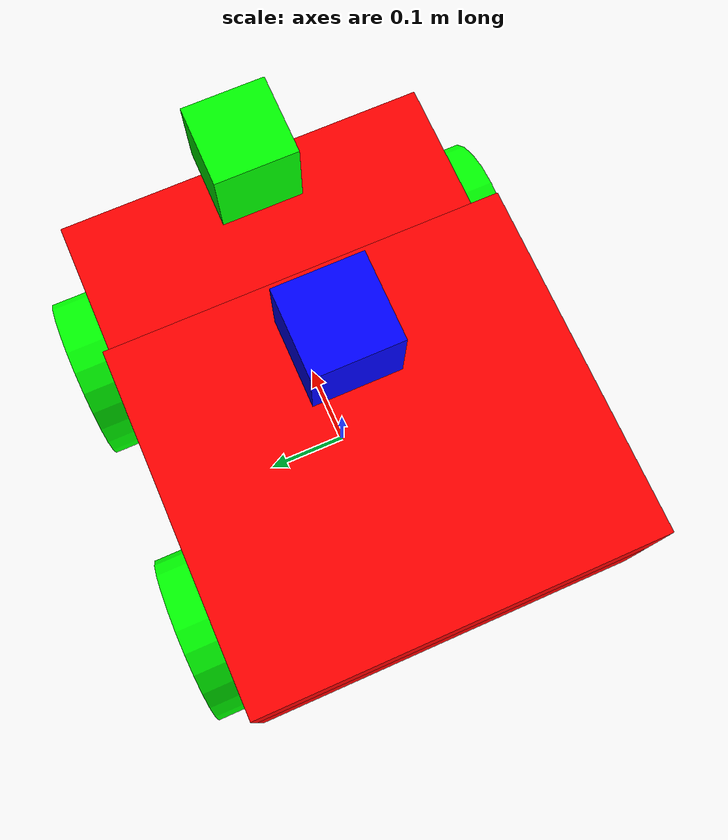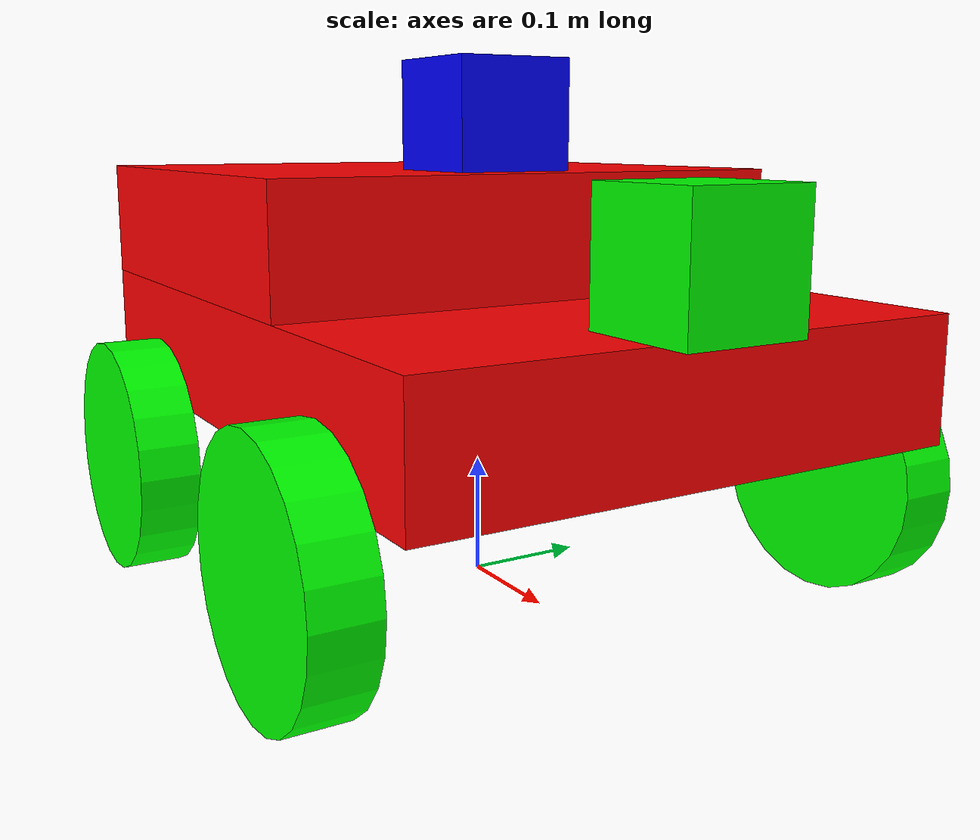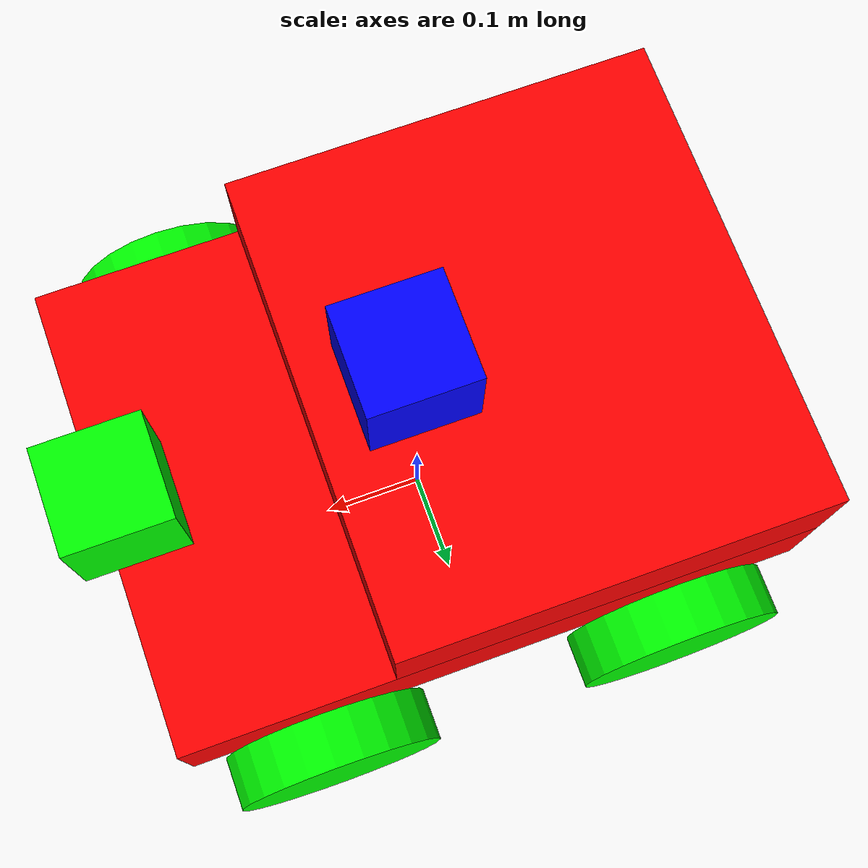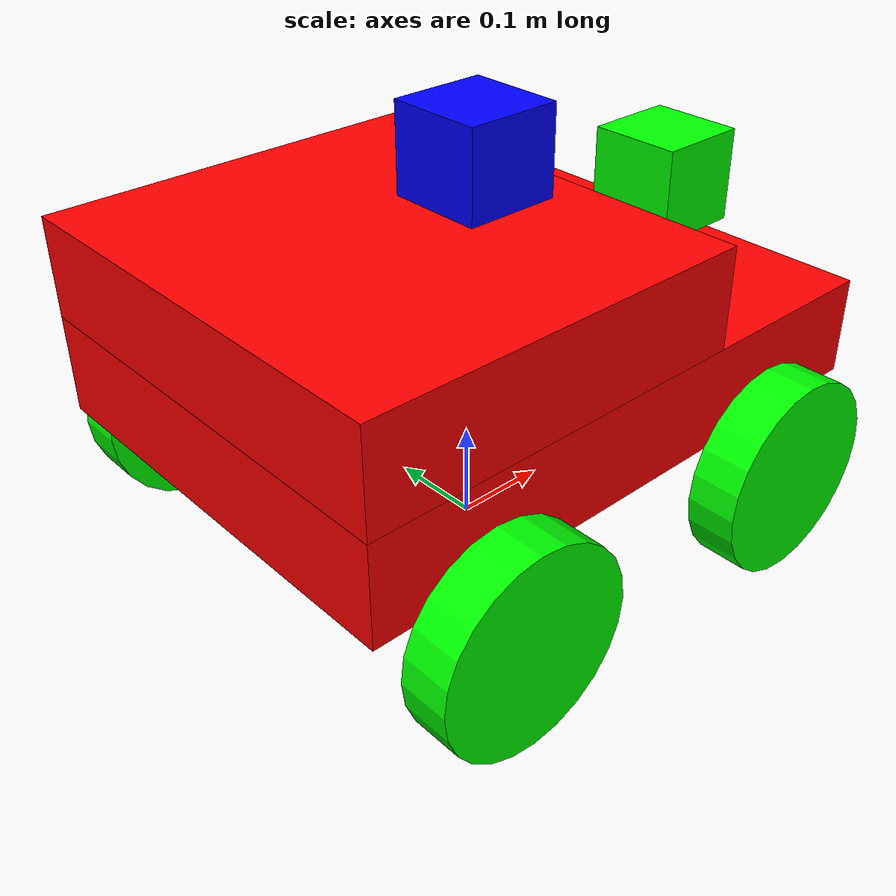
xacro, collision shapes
<?xml version='1.0'?>

<robot name="diffrobot" xmlns:xacro="http://www.ros.org/wiki/xacro">
    <xacro:include filename="$(find diffrobot_description)/urdf/diffrobot.gazebo"/>
    <link name="robot_footprint">
    </link>

    <joint name="robot_footprint_joint" type="fixed">
        <parent link="robot_footprint"/>
        <child link="base_link"/>
    </joint>

    <link name="base_link">
        <inertial>
            <origin xyz="0.0 0.0 0.0"/>
            <mass value="20"/>
            <inertia ixx="0.1" ixy="0.0" ixz="0.0" iyy="0.1" iyz="0.0" izz="0.1"/>
        </inertial>
        <visual name='base_link_visual'>
            <origin xyz="0.0 0.0 0.20" />
            <geometry>
                <box size="0.6 0.45 0.1"/>
            </geometry>
             <material name="">
            <color rgba="1.0 0.0 0.0 1.0"/>
            <texture filename=""/>
        </material>
        </visual>

        <collision name=''>
            <origin xyz="0.0 0.0 0.2" rpy="0.0 0.0 0.0"/>
            <geometry>
                <box size="0.6 0.45 0.1"/>
            </geometry>
        </collision>
        <visual name='base_link_visual'>
            <origin xyz="-0.10 0.0 0.30" />
            <geometry>
                <box size="0.4 0.45 0.1"/>
            </geometry>
             <material name="">
            <color rgba="1.0 0.0 0.0 1.0"/>
            <texture filename=""/>
        </material>
        </visual>

        <collision name=''>
            <origin xyz="-0.10 0.0 0.30" />
            <geometry>
                <box size="0.4 0.45 0.1"/>
            </geometry>
        </collision>
        </link>

    <link name="front_right_wheel">
    <inertial>
      <mass value="5"/>
      <origin rpy="0 0 0" xyz="0 0 0"/>
      <inertia ixx="0.1" ixy="0" ixz="0" iyy="0.1" iyz="0" izz="0.1"/>
    </inertial>

    <collision name="front_right_wheel_collision">
      <origin rpy="0 1.5707 1.5707" xyz="0 0 0" />
      <geometry>
        <cylinder length="0.05" radius="0.1"/>
      </geometry>
    </collision>

    <visual name="front_right_wheel_visual">
      <origin rpy="0 1.5707 1.5707" xyz="0 0 0"/>
      <geometry>
        <cylinder length="0.05" radius="0.1"/>
      </geometry>
     <material name="">
            <color rgba="0.0 1.0 0.0 1.0"/>
            <texture filename=""/>
        </material>
    </visual>

  </link>
  <joint name="joint_front_right_wheel" type="continuous">
    <origin rpy="0 0 0" xyz="0.175 -0.25 0.1"/>
    <child link="front_right_wheel" />
    <parent link="base_link"/>
    <axis rpy="0 0 0" xyz="0 1 0"/>
  </joint>

    <link name="front_left_wheel">
    <inertial>
      <mass value="5"/>
      <origin rpy="0 0 0" xyz="0 0 0"/>
      <inertia ixx="0.1" ixy="0" ixz="0" iyy="0.1" iyz="0" izz="0.1"/>
    </inertial>

    <collision name="front_left_wheel_collision">
      <origin rpy="0 1.5707 1.5707" xyz="0 0 0" />
      <geometry>
        <cylinder length="0.05" radius="0.1"/>
      </geometry>
    </collision>

    <visual name="front_left_wheel_visual">
      <origin rpy="0 1.5707 1.5707" xyz="0 0 0"/>
      <geometry>
        <cylinder length="0.05" radius="0.1"/>
      </geometry>
      <material name="">
            <color rgba="0.0 1.0 0.0 1.0"/>
            <texture filename=""/>
        </material>
    </visual>

  </link>
  <joint name="joint_front_left_wheel" type="continuous">
   <origin rpy="0 0 0" xyz="0.175 0.25 0.1"/>
    <child link="front_left_wheel" />
    <parent link="base_link"/>
    <axis rpy="0 0 0" xyz="0 1 0"/>
  </joint>

<link name="back_left_wheel">
    <inertial>
      <mass value="5"/>
      <origin rpy="0 0 0" xyz="0 0 0"/>
      <inertia ixx="0.1" ixy="0" ixz="0" iyy="0.1" iyz="0" izz="0.1"/>
    </inertial>

    <collision name="back_left_wheel_collision">
    <origin xyz="0.0 0.0 0.0" rpy="0.0 0.0 0.0"/>
      <geometry>
        <cylinder length="0.05" radius="0.1"/>
      </geometry>
    </collision>

    <visual name="back_left_wheel_visual">
      <origin xyz="0.0 0.0 0.0" rpy="0.0 0.0 0.0"/>
      <geometry>
        <cylinder length="0.05" radius="0.1"/>
      </geometry>
      <material name="">
            <color rgba="0.0 1.0 0.0 1.0"/>
            <texture filename=""/>
        </material>
    </visual>

  </link>
  <joint name="joint_back_left_wheel" type="fixed">
   <origin rpy="0 -1.5707 1.5707" xyz="-0.175 0.25 0.1" />
    <child link="back_left_wheel" />
    <parent link="base_link"/>
    <axis rpy="0 0 0" xyz="0 1 0"/>
  </joint>

  <link name="back_right_wheel">
    <inertial>
      <mass value="5"/>
      <origin rpy="0 0 0" xyz="0 0 0"/>
      <inertia ixx="0.1" ixy="0" ixz="0" iyy="0.1" iyz="0" izz="0.1"/>
    </inertial>

    <collision name="back_right_wheel_collision">
      <origin xyz="0.0 0.0 0.0" rpy="0.0 0.0 0.0"/>
      <geometry>
        <cylinder length="0.05" radius="0.1"/>
      </geometry>
    </collision>

    <visual name="back_right_wheel_visual">
      <origin xyz="0.0 0.0 0.0" rpy="0.0 0.0 0.0"/>
      <geometry>
        <cylinder length="0.05" radius="0.1"/>
      </geometry>
      <material name="">
            <color rgba="0.0 1.0 0.0 1.0"/>
            <texture filename=""/>
        </material>
    </visual>

  </link>
  <joint name="joint_back_right_wheel" type="fixed">
    <origin rpy="0 -1.5707 1.5707" xyz="-0.175 -0.25 0.1" />
    <child link="back_right_wheel" />
    <parent link="base_link"/>
    <axis rpy="0 0 0" xyz="0 1 0"/>
  </joint>

   <link name="lidar_link">
        <inertial>
            <origin xyz="0.0 0.0 0.0" rpy="0.0 0.0 0.0"/>
            <mass value="0.1"/>
            <inertia ixx="0.0" ixy="0.0" ixz="0.0" iyy="0.0" iyz="0.0" izz="0.0"/>
        </inertial>
        <visual name="lidar_link_visual">
            <origin xyz="0.0 0.0 0.0" rpy="0.0 0.0 0.0"/>
            <geometry>
              <mesh filename="package://diffrobot_description/meshes/lidar_link.STL"/>
            </geometry>
            <material name="">
                <color rgba="0.0 0.0 1.0 1.0"/>
                <texture filename=""/>
            </material>
        </visual>
        <collision>
            <origin xyz="0.0 0.0 0.0" rpy="0.0 0.0 0.0"/>
            <geometry>
                 <box size="0.1 0.1 0.1"/>
            </geometry>
        </collision>
    </link>

    <joint name="lidar_joint" type="fixed">
         <origin xyz="0.01 0.0 0.39" rpy="1.5708 0.0 1.5708"/>
        <parent link="base_link"/>
        <child link="lidar_link"/>
    </joint>

<link name="laser_data_link">

</link>

<joint name="laser_data_joint" type="fixed">
     <origin xyz="0.01 0.0 0.12" rpy="0.0 -1.5708 -1.5708"/>
    <parent link="lidar_link"/>
    <child link="laser_data_link"/>
</joint>

   <link name="camera_link">
    <inertial>
        <origin xyz="0.0 0.0 0.0" rpy="0.0 0.0 0.0"/>
        <mass value="0.1"/>
        <inertia ixx="0.0" ixy="0.0" ixz="0.0" iyy="0.0" iyz="0.0" izz="0.0"/>
    </inertial>
    <visual name="camera_link_visual">
        <origin xyz="0.0 0.0 0.0" rpy="0.0 0.0 0.0"/>
        <geometry>
           <mesh filename="package://diffrobot_description/meshes/kinect sensor.dae"/>
        </geometry>
        <material name="">
            <color rgba="0.0 1.0 0.0 1.0"/>
            <texture filename=""/>
        </material>
    </visual>
    <collision>
        <origin xyz="0.0 0.0 0.0" rpy="0.0 0.0 0.0"/>
        <geometry>
            <box size="0.1 0.1 0.1"/>
        </geometry>
    </collision>
</link>
<joint name="camera_joint" type="fixed">
   <origin xyz="0.28 0.0 0.30" rpy="0.0 0.0 0.0"/>
    <parent link="base_link"/>
    <child link="camera_link"/>
</joint>

</robot>
